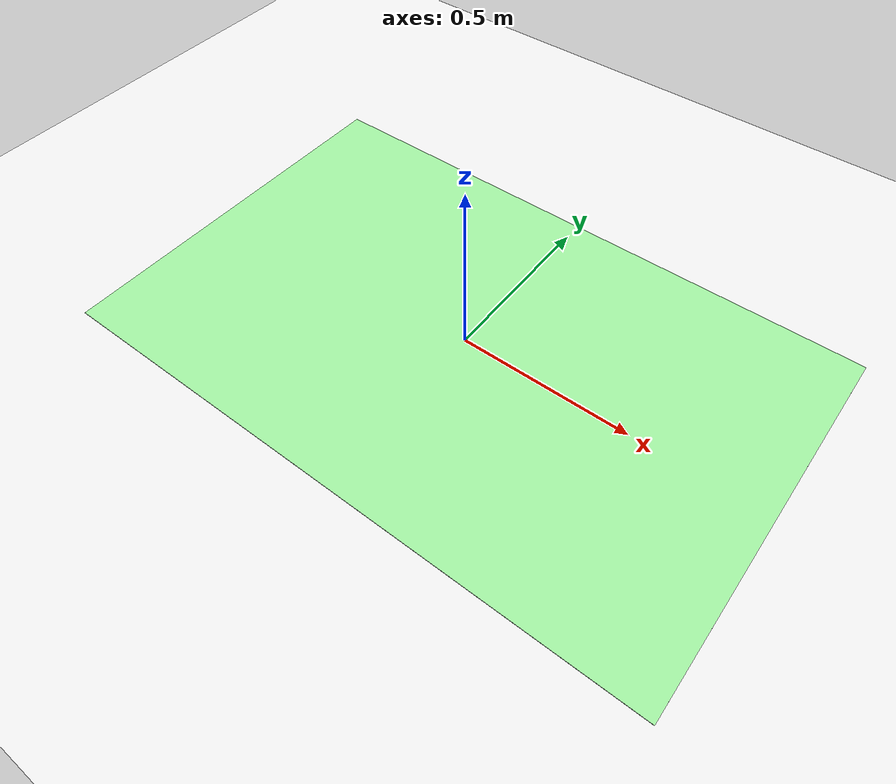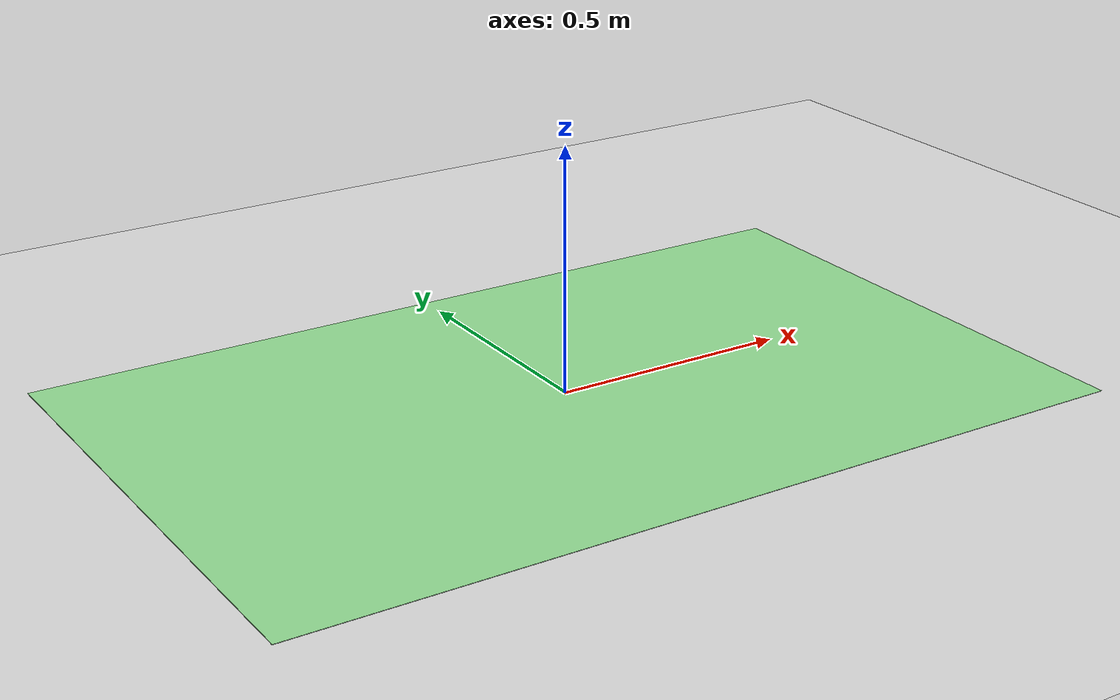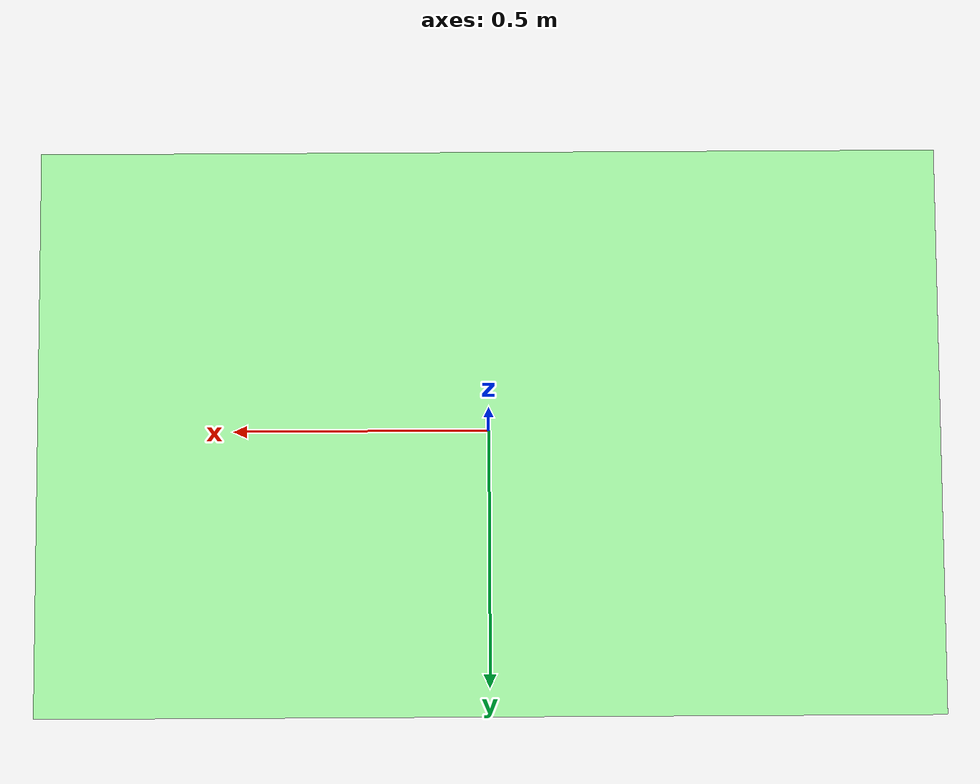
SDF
<?xml version="1.0" ?>
<sdf version="1.8">
  <world name="tracking_room">
    <!-- 1. 시뮬레이션 핵심 시스템(플러그인) 설정 -->
    <plugin filename="gz-sim-physics-system" name="gz::sim::systems::Physics"/> <!-- 물리 엔진 (중력, 충돌 등) -->
    <plugin filename="gz-sim-scene-broadcaster-system" name="gz::sim::systems::SceneBroadcaster"/> <!-- GUI에 화면 전달 -->
    <plugin filename="gz-sim-sensors-system" name="gz::sim::systems::Sensors"> <!-- 센서(카메라 등) 렌더링 엔진 설정 -->
      <render_engine>ogre2</render_engine>
    </plugin>
    <plugin filename="gz-sim-user-commands-system" name="gz::sim::systems::UserCommands"/> <!-- 사용자 명령(모델 이동 등) 처리 -->

    <!-- 2. 전역 배경 및 조명 설정 -->
    <scene>
      <ambient>0.6 0.6 0.6 1.0</ambient> <!-- 기본 주변광 밝기 -->
      <background>0.9 0.9 0.9 1.0</background> <!-- 하늘/배경 색상 -->
      <grid>true</grid> <!-- 바닥 그리드 표시 여부 -->
    </scene>

    <!-- 태양광 설정 -->
    <light type="directional" name="sun">
      <cast_shadows>true</cast_shadows> <!-- 그림자 활성화 -->
      <pose>0 0 10 0 0 0</pose> <!-- 빛의 위치 -->
      <diffuse>1.0 1.0 1.0 1</diffuse> <!-- 퍼지는 빛의 색상 (흰색) -->
      <specular>0.5 0.5 0.5 1</specular> <!-- 반사광 색상 -->
      <direction>-0.5 0.1 -0.9</direction> <!-- 빛이 내리쬐는 방향 -->
    </light>

    <!-- 3. 무한 바닥판(Ground Plane) 설정 -->
    <model name="ground_plane">
      <static>true</static> <!-- 움직이지 않는 고정 물체 -->
      <link name="floor_mat">
        <collision name="collision"> <!-- 충돌 범위 (물체가 빠지지 않게 함) -->
          <geometry><plane><normal>0 0 1</normal><size>10 10</size></plane></geometry>
        </collision>
        <visual name="visual"> <!-- 눈에 보이는 모습 -->
          <geometry><plane><normal>0 0 1</normal><size>10 10</size></plane></geometry>
          <material><ambient>0.9 0.9 0.9 1</ambient></material>
        </visual>
      </link>
    </model>

    <!-- 4. 실제 작업 구역(Room) 설정 -->
    <model name="actual_room">
      <static>true</static>

      <!-- 초록색 바닥 매트 (1.77m x 1.11m) -->
      <link name="floor_mat">
        <pose>0 0 0.001 0 0 0</pose> <!-- 바닥 겹침 방지를 위해 살짝 띄움 -->
        <visual name="vis">
          <geometry><plane><normal>0 0 1</normal><size>1.77 1.11</size></plane></geometry>
          <material>
            <ambient>0.6 0.9 0.6 1</ambient> <!-- 연한 초록색 -->
            <diffuse>0.6 0.9 0.6 1</diffuse>
          </material>
        </visual>
        <collision name="col_floor">
          <geometry><plane><normal>0 0 1</normal><size>1.77 1.11</size></plane></geometry>
        </collision>
      </link>

      <!-- 사방 벽면 설정 (높이 0.3m 초록색 벽) -->

    </model>

    <!-- 5. 천장 오버헤드 카메라 (Top-View) 설정 -->
    <model name="ceiling_camera">
      <static>true</static>
      <!-- 높이 1.9m에서 바닥을 향하도록(Pitch 1.57rad) 배치 -->
      <pose>0 0 1.9 0 1.5708 0</pose>
      <link name="link">
        <sensor name="camera" type="camera">
          <camera>
            <horizontal_fov>1.047</horizontal_fov> <!-- 화각 (약 60도) -->
            <image><width>640</width><height>480</height></image> <!-- 해상도 -->
            <clip><near>0.1</near><far>100</far></clip> <!-- 렌더링 거리 범위 -->
          </camera>
          <always_on>1</always_on>
          <update_rate>30</update_rate> <!-- FPS (초당 프레임 수) -->
          <visualize>true</visualize> <!-- 시뮬레이터 상에서 카메라 시야각 표시 -->
          <topic>/overhead_camera/image_raw</topic> <!-- ROS 등에서 구독할 토픽명 -->
        </sensor>
      </link>
    </model>
  </world>
</sdf>
